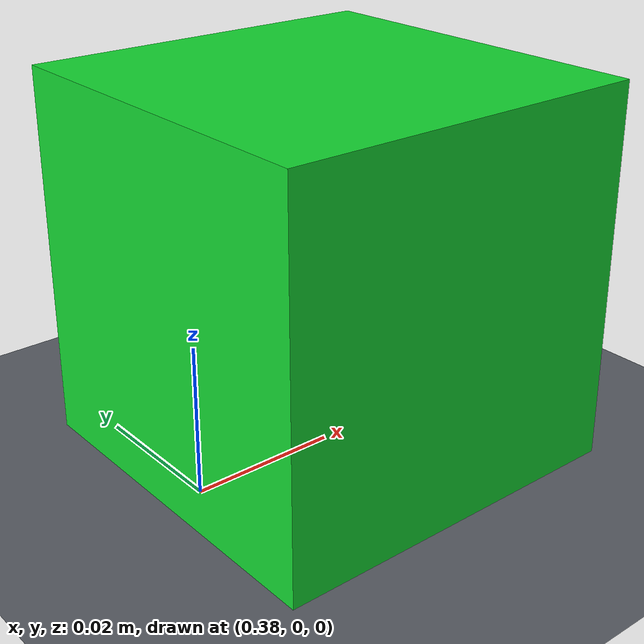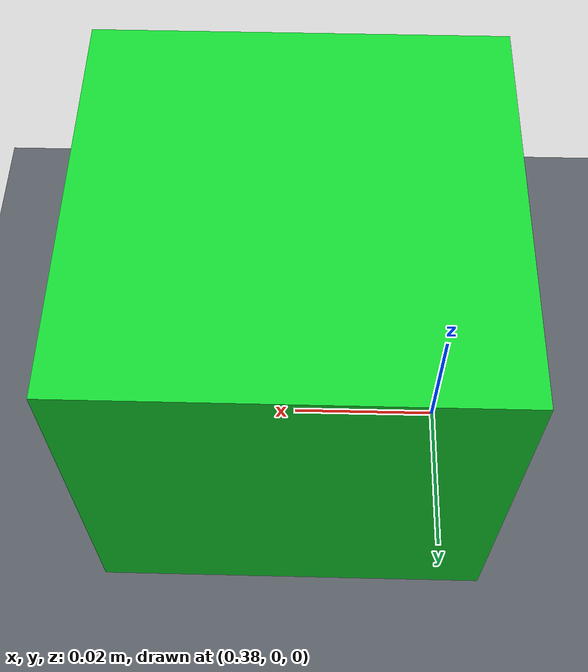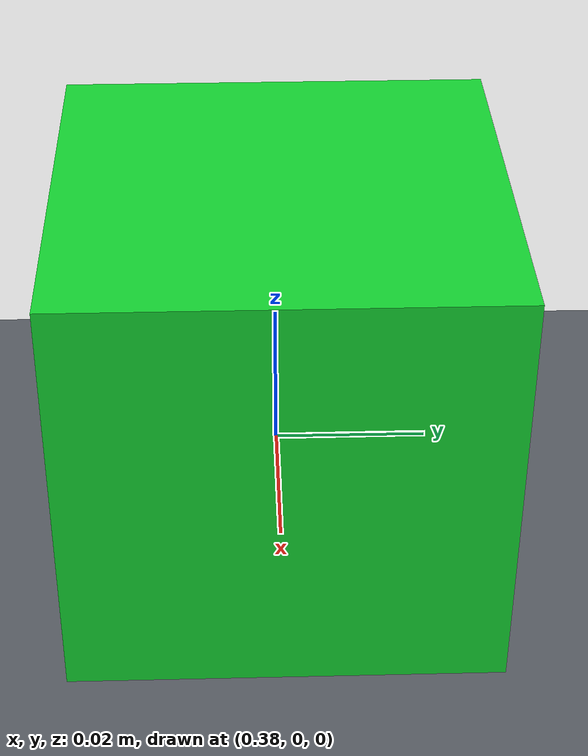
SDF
<?xml version="1.0"?>
<sdf version="1.10">
  <world name="bench_with_target">

    <physics name="1ms" type="ignored">
      <max_step_size>0.001</max_step_size>
      <real_time_factor>1.0</real_time_factor>
    </physics>

    <plugin filename="gz-sim-physics-system"
            name="gz::sim::systems::Physics"/>
    <plugin filename="gz-sim-user-commands-system"
            name="gz::sim::systems::UserCommands"/>
    <plugin filename="gz-sim-scene-broadcaster-system"
            name="gz::sim::systems::SceneBroadcaster"/>
    <!-- Required for ros_gz_bridge to see /clock and for controllers to
         run on simulation time. -->
    <plugin filename="gz-sim-sensors-system"
            name="gz::sim::systems::Sensors">
      <render_engine>ogre2</render_engine>
    </plugin>

    <plugin filename="gz-sim-imu-system"
            name="gz::sim::systems::Imu">
    </plugin>

    <light type="directional" name="sun">
      <cast_shadows>true</cast_shadows>
      <pose>0 0 10 0 0 0</pose>
      <diffuse>0.8 0.8 0.8 1</diffuse>
      <specular>0.2 0.2 0.2 1</specular>
      <direction>-0.5 0.1 -0.9</direction>
    </light>

    <model name="ground_plane">
      <static>true</static>
      <link name="link">
        <collision name="collision">
          <geometry><plane><normal>0 0 1</normal><size>10 10</size></plane></geometry>
        </collision>
        <visual name="visual">
          <geometry><plane><normal>0 0 1</normal><size>10 10</size></plane></geometry>
          <material>
            <ambient>0.3 0.32 0.35 1</ambient>
            <diffuse>0.35 0.37 0.40 1</diffuse>
          </material>
        </visual>
      </link>
    </model>

    <model name="target_cube">
      <static>true</static>
      <pose>0.40 0 0.025 0 0 0</pose>
      <link name="link">
        <collision name="collision">
          <geometry><box><size>0.05 0.05 0.05</size></box></geometry>
        </collision>
        <visual name="visual">
          <geometry><box><size>0.05 0.05 0.05</size></box></geometry>
          <material>
            <ambient>0.05 0.65 0.15 1</ambient>
            <diffuse>0.08 0.85 0.20 1</diffuse>
            <specular>0.05 0.05 0.05 1</specular>
          </material>
        </visual>
      </link>
    </model>

  </world>
</sdf>
